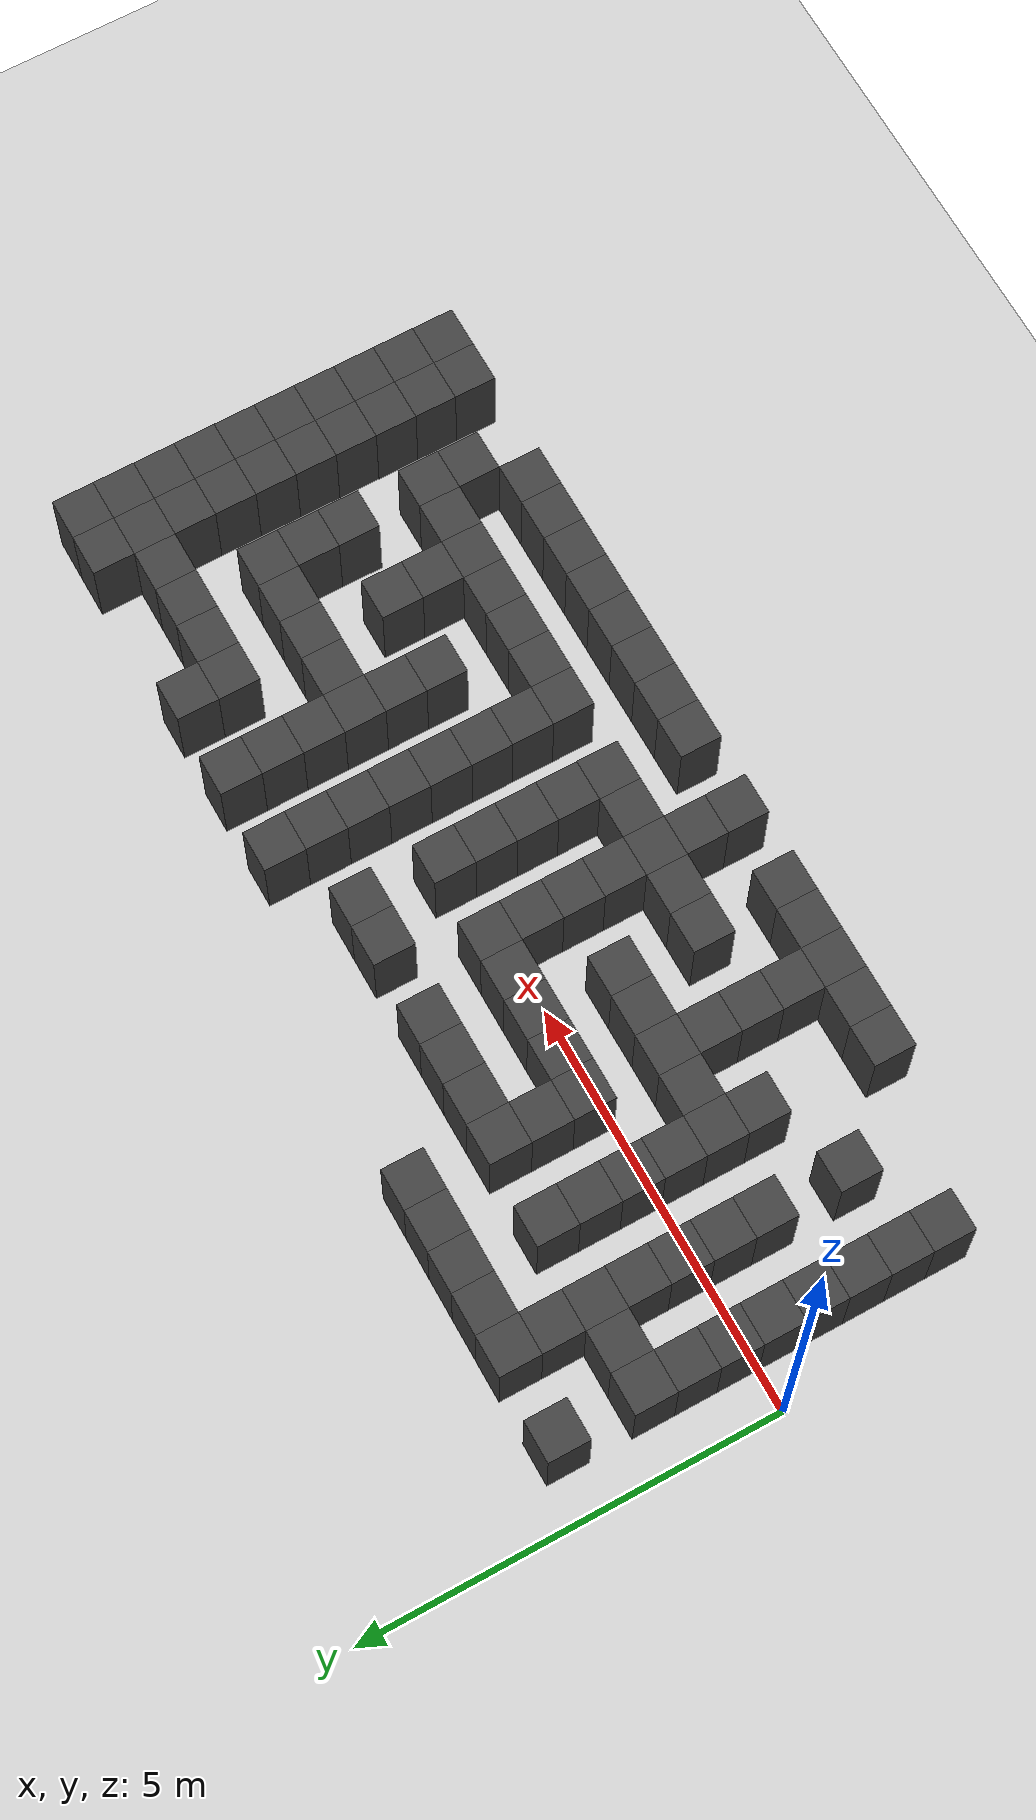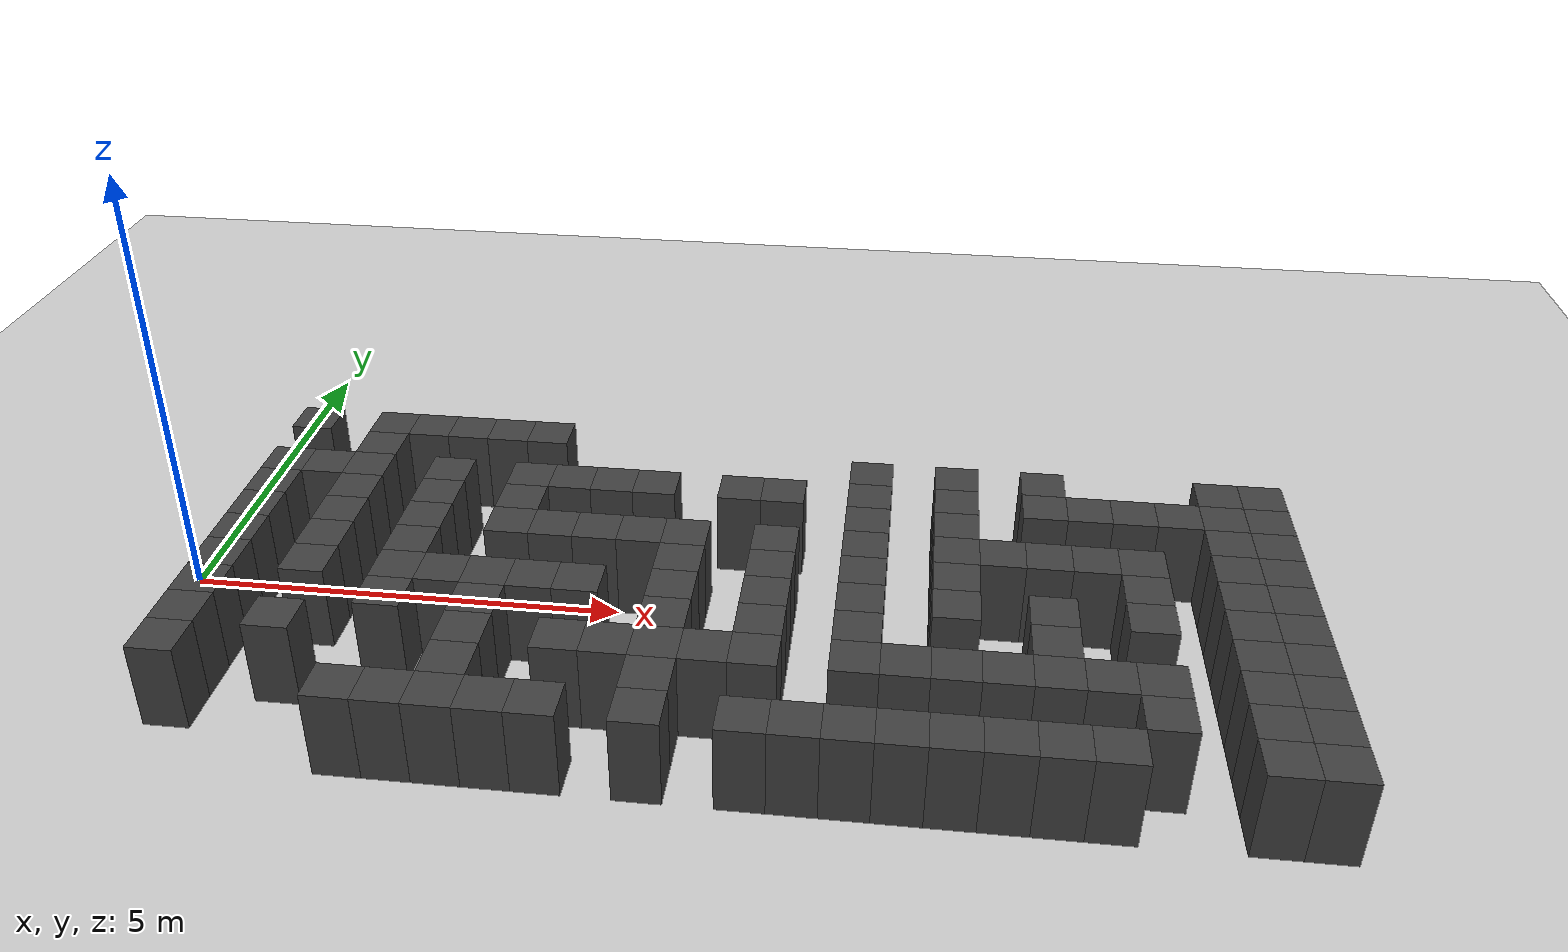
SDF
<sdf version="1.7">
 <world name="map_17663">
  <model name="ground_plane">
   <static>true</static>
   <link name="link">
    <collision name="collision">
     <geometry><plane><normal>0 0 1</normal><size>200 200</size></plane></geometry>
    </collision>
    <visual name="visual">
     <geometry><plane><normal>0 0 1</normal><size>200 200</size></plane></geometry>
     <material><ambient>0.8 0.8 0.8 1</ambient><diffuse>0.8 0.8 0.8 1</diffuse></material>
    </visual>
   </link>
  </model>
  <model name="maze_environment">
   <static>true</static>
   <link name="wall_517">
    <pose>0.750 2.250 0.500 0 0 0</pose>
    <collision name="col"><geometry><box><size>0.5 0.5 1.0</size></box></geometry></collision>
    <visual name="vis">
     <geometry><box><size>0.5 0.5 1.0</size></box></geometry>
     <material><ambient>0.15 0.15 0.15 1</ambient><diffuse>0.25 0.25 0.25 1</diffuse></material>
    </visual>
   </link>
   <link name="wall_518">
    <pose>1.750 2.250 0.500 0 0 0</pose>
    <collision name="col"><geometry><box><size>0.5 0.5 1.0</size></box></geometry></collision>
    <visual name="vis">
     <geometry><box><size>0.5 0.5 1.0</size></box></geometry>
     <material><ambient>0.15 0.15 0.15 1</ambient><diffuse>0.25 0.25 0.25 1</diffuse></material>
    </visual>
   </link>
   <link name="wall_519">
    <pose>2.250 2.250 0.500 0 0 0</pose>
    <collision name="col"><geometry><box><size>0.5 0.5 1.0</size></box></geometry></collision>
    <visual name="vis">
     <geometry><box><size>0.5 0.5 1.0</size></box></geometry>
     <material><ambient>0.15 0.15 0.15 1</ambient><diffuse>0.25 0.25 0.25 1</diffuse></material>
    </visual>
   </link>
   <link name="wall_520">
    <pose>2.750 2.250 0.500 0 0 0</pose>
    <collision name="col"><geometry><box><size>0.5 0.5 1.0</size></box></geometry></collision>
    <visual name="vis">
     <geometry><box><size>0.5 0.5 1.0</size></box></geometry>
     <material><ambient>0.15 0.15 0.15 1</ambient><diffuse>0.25 0.25 0.25 1</diffuse></material>
    </visual>
   </link>
   <link name="wall_521">
    <pose>3.250 2.250 0.500 0 0 0</pose>
    <collision name="col"><geometry><box><size>0.5 0.5 1.0</size></box></geometry></collision>
    <visual name="vis">
     <geometry><box><size>0.5 0.5 1.0</size></box></geometry>
     <material><ambient>0.15 0.15 0.15 1</ambient><diffuse>0.25 0.25 0.25 1</diffuse></material>
    </visual>
   </link>
   <link name="wall_522">
    <pose>3.750 2.250 0.500 0 0 0</pose>
    <collision name="col"><geometry><box><size>0.5 0.5 1.0</size></box></geometry></collision>
    <visual name="vis">
     <geometry><box><size>0.5 0.5 1.0</size></box></geometry>
     <material><ambient>0.15 0.15 0.15 1</ambient><diffuse>0.25 0.25 0.25 1</diffuse></material>
    </visual>
   </link>
   <link name="wall_537">
    <pose>1.750 1.750 0.500 0 0 0</pose>
    <collision name="col"><geometry><box><size>0.5 0.5 1.0</size></box></geometry></collision>
    <visual name="vis">
     <geometry><box><size>0.5 0.5 1.0</size></box></geometry>
     <material><ambient>0.15 0.15 0.15 1</ambient><diffuse>0.25 0.25 0.25 1</diffuse></material>
    </visual>
   </link>
   <link name="wall_538">
    <pose>7.750 1.750 0.500 0 0 0</pose>
    <collision name="col"><geometry><box><size>0.5 0.5 1.0</size></box></geometry></collision>
    <visual name="vis">
     <geometry><box><size>0.5 0.5 1.0</size></box></geometry>
     <material><ambient>0.15 0.15 0.15 1</ambient><diffuse>0.25 0.25 0.25 1</diffuse></material>
    </visual>
   </link>
   <link name="wall_539">
    <pose>8.750 1.750 0.500 0 0 0</pose>
    <collision name="col"><geometry><box><size>0.5 0.5 1.0</size></box></geometry></collision>
    <visual name="vis">
     <geometry><box><size>0.5 0.5 1.0</size></box></geometry>
     <material><ambient>0.15 0.15 0.15 1</ambient><diffuse>0.25 0.25 0.25 1</diffuse></material>
    </visual>
   </link>
   <link name="wall_540">
    <pose>9.750 1.750 0.500 0 0 0</pose>
    <collision name="col"><geometry><box><size>0.5 0.5 1.0</size></box></geometry></collision>
    <visual name="vis">
     <geometry><box><size>0.5 0.5 1.0</size></box></geometry>
     <material><ambient>0.15 0.15 0.15 1</ambient><diffuse>0.25 0.25 0.25 1</diffuse></material>
    </visual>
   </link>
   <link name="wall_541">
    <pose>11.750 1.750 0.500 0 0 0</pose>
    <collision name="col"><geometry><box><size>0.5 0.5 1.0</size></box></geometry></collision>
    <visual name="vis">
     <geometry><box><size>0.5 0.5 1.0</size></box></geometry>
     <material><ambient>0.15 0.15 0.15 1</ambient><diffuse>0.25 0.25 0.25 1</diffuse></material>
    </visual>
   </link>
   <link name="wall_542">
    <pose>12.250 1.750 0.500 0 0 0</pose>
    <collision name="col"><geometry><box><size>0.5 0.5 1.0</size></box></geometry></collision>
    <visual name="vis">
     <geometry><box><size>0.5 0.5 1.0</size></box></geometry>
     <material><ambient>0.15 0.15 0.15 1</ambient><diffuse>0.25 0.25 0.25 1</diffuse></material>
    </visual>
   </link>
   <link name="wall_559">
    <pose>0.750 1.250 0.500 0 0 0</pose>
    <collision name="col"><geometry><box><size>0.5 0.5 1.0</size></box></geometry></collision>
    <visual name="vis">
     <geometry><box><size>0.5 0.5 1.0</size></box></geometry>
     <material><ambient>0.15 0.15 0.15 1</ambient><diffuse>0.25 0.25 0.25 1</diffuse></material>
    </visual>
   </link>
   <link name="wall_560">
    <pose>1.250 1.250 0.500 0 0 0</pose>
    <collision name="col"><geometry><box><size>0.5 0.5 1.0</size></box></geometry></collision>
    <visual name="vis">
     <geometry><box><size>0.5 0.5 1.0</size></box></geometry>
     <material><ambient>0.15 0.15 0.15 1</ambient><diffuse>0.25 0.25 0.25 1</diffuse></material>
    </visual>
   </link>
   <link name="wall_561">
    <pose>1.750 1.250 0.500 0 0 0</pose>
    <collision name="col"><geometry><box><size>0.5 0.5 1.0</size></box></geometry></collision>
    <visual name="vis">
     <geometry><box><size>0.5 0.5 1.0</size></box></geometry>
     <material><ambient>0.15 0.15 0.15 1</ambient><diffuse>0.25 0.25 0.25 1</diffuse></material>
    </visual>
   </link>
   <link name="wall_562">
    <pose>2.750 1.250 0.500 0 0 0</pose>
    <collision name="col"><geometry><box><size>0.5 0.5 1.0</size></box></geometry></collision>
    <visual name="vis">
     <geometry><box><size>0.5 0.5 1.0</size></box></geometry>
     <material><ambient>0.15 0.15 0.15 1</ambient><diffuse>0.25 0.25 0.25 1</diffuse></material>
    </visual>
   </link>
   <link name="wall_563">
    <pose>3.750 1.250 0.500 0 0 0</pose>
    <collision name="col"><geometry><box><size>0.5 0.5 1.0</size></box></geometry></collision>
    <visual name="vis">
     <geometry><box><size>0.5 0.5 1.0</size></box></geometry>
     <material><ambient>0.15 0.15 0.15 1</ambient><diffuse>0.25 0.25 0.25 1</diffuse></material>
    </visual>
   </link>
   <link name="wall_564">
    <pose>4.250 1.250 0.500 0 0 0</pose>
    <collision name="col"><geometry><box><size>0.5 0.5 1.0</size></box></geometry></collision>
    <visual name="vis">
     <geometry><box><size>0.5 0.5 1.0</size></box></geometry>
     <material><ambient>0.15 0.15 0.15 1</ambient><diffuse>0.25 0.25 0.25 1</diffuse></material>
    </visual>
   </link>
   <link name="wall_565">
    <pose>4.750 1.250 0.500 0 0 0</pose>
    <collision name="col"><geometry><box><size>0.5 0.5 1.0</size></box></geometry></collision>
    <visual name="vis">
     <geometry><box><size>0.5 0.5 1.0</size></box></geometry>
     <material><ambient>0.15 0.15 0.15 1</ambient><diffuse>0.25 0.25 0.25 1</diffuse></material>
    </visual>
   </link>
   <link name="wall_566">
    <pose>5.250 1.250 0.500 0 0 0</pose>
    <collision name="col"><geometry><box><size>0.5 0.5 1.0</size></box></geometry></collision>
    <visual name="vis">
     <geometry><box><size>0.5 0.5 1.0</size></box></geometry>
     <material><ambient>0.15 0.15 0.15 1</ambient><diffuse>0.25 0.25 0.25 1</diffuse></material>
    </visual>
   </link>
   <link name="wall_567">
    <pose>6.250 1.250 0.500 0 0 0</pose>
    <collision name="col"><geometry><box><size>0.5 0.5 1.0</size></box></geometry></collision>
    <visual name="vis">
     <geometry><box><size>0.5 0.5 1.0</size></box></geometry>
     <material><ambient>0.15 0.15 0.15 1</ambient><diffuse>0.25 0.25 0.25 1</diffuse></material>
    </visual>
   </link>
   <link name="wall_568">
    <pose>6.750 1.250 0.500 0 0 0</pose>
    <collision name="col"><geometry><box><size>0.5 0.5 1.0</size></box></geometry></collision>
    <visual name="vis">
     <geometry><box><size>0.5 0.5 1.0</size></box></geometry>
     <material><ambient>0.15 0.15 0.15 1</ambient><diffuse>0.25 0.25 0.25 1</diffuse></material>
    </visual>
   </link>
   <link name="wall_569">
    <pose>7.750 1.250 0.500 0 0 0</pose>
    <collision name="col"><geometry><box><size>0.5 0.5 1.0</size></box></geometry></collision>
    <visual name="vis">
     <geometry><box><size>0.5 0.5 1.0</size></box></geometry>
     <material><ambient>0.15 0.15 0.15 1</ambient><diffuse>0.25 0.25 0.25 1</diffuse></material>
    </visual>
   </link>
   <link name="wall_570">
    <pose>8.750 1.250 0.500 0 0 0</pose>
    <collision name="col"><geometry><box><size>0.5 0.5 1.0</size></box></geometry></collision>
    <visual name="vis">
     <geometry><box><size>0.5 0.5 1.0</size></box></geometry>
     <material><ambient>0.15 0.15 0.15 1</ambient><diffuse>0.25 0.25 0.25 1</diffuse></material>
    </visual>
   </link>
   <link name="wall_571">
    <pose>9.750 1.250 0.500 0 0 0</pose>
    <collision name="col"><geometry><box><size>0.5 0.5 1.0</size></box></geometry></collision>
    <visual name="vis">
     <geometry><box><size>0.5 0.5 1.0</size></box></geometry>
     <material><ambient>0.15 0.15 0.15 1</ambient><diffuse>0.25 0.25 0.25 1</diffuse></material>
    </visual>
   </link>
   <link name="wall_572">
    <pose>10.250 1.250 0.500 0 0 0</pose>
    <collision name="col"><geometry><box><size>0.5 0.5 1.0</size></box></geometry></collision>
    <visual name="vis">
     <geometry><box><size>0.5 0.5 1.0</size></box></geometry>
     <material><ambient>0.15 0.15 0.15 1</ambient><diffuse>0.25 0.25 0.25 1</diffuse></material>
    </visual>
   </link>
   <link name="wall_573">
    <pose>10.750 1.250 0.500 0 0 0</pose>
    <collision name="col"><geometry><box><size>0.5 0.5 1.0</size></box></geometry></collision>
    <visual name="vis">
     <geometry><box><size>0.5 0.5 1.0</size></box></geometry>
     <material><ambient>0.15 0.15 0.15 1</ambient><diffuse>0.25 0.25 0.25 1</diffuse></material>
    </visual>
   </link>
   <link name="wall_574">
    <pose>11.250 1.250 0.500 0 0 0</pose>
    <collision name="col"><geometry><box><size>0.5 0.5 1.0</size></box></geometry></collision>
    <visual name="vis">
     <geometry><box><size>0.5 0.5 1.0</size></box></geometry>
     <material><ambient>0.15 0.15 0.15 1</ambient><diffuse>0.25 0.25 0.25 1</diffuse></material>
    </visual>
   </link>
   <link name="wall_575">
    <pose>11.750 1.250 0.500 0 0 0</pose>
    <collision name="col"><geometry><box><size>0.5 0.5 1.0</size></box></geometry></collision>
    <visual name="vis">
     <geometry><box><size>0.5 0.5 1.0</size></box></geometry>
     <material><ambient>0.15 0.15 0.15 1</ambient><diffuse>0.25 0.25 0.25 1</diffuse></material>
    </visual>
   </link>
   <link name="wall_576">
    <pose>12.250 1.250 0.500 0 0 0</pose>
    <collision name="col"><geometry><box><size>0.5 0.5 1.0</size></box></geometry></collision>
    <visual name="vis">
     <geometry><box><size>0.5 0.5 1.0</size></box></geometry>
     <material><ambient>0.15 0.15 0.15 1</ambient><diffuse>0.25 0.25 0.25 1</diffuse></material>
    </visual>
   </link>
   <link name="wall_579">
    <pose>0.750 0.750 0.500 0 0 0</pose>
    <collision name="col"><geometry><box><size>0.5 0.5 1.0</size></box></geometry></collision>
    <visual name="vis">
     <geometry><box><size>0.5 0.5 1.0</size></box></geometry>
     <material><ambient>0.15 0.15 0.15 1</ambient><diffuse>0.25 0.25 0.25 1</diffuse></material>
    </visual>
   </link>
   <link name="wall_580">
    <pose>1.750 0.750 0.500 0 0 0</pose>
    <collision name="col"><geometry><box><size>0.5 0.5 1.0</size></box></geometry></collision>
    <visual name="vis">
     <geometry><box><size>0.5 0.5 1.0</size></box></geometry>
     <material><ambient>0.15 0.15 0.15 1</ambient><diffuse>0.25 0.25 0.25 1</diffuse></material>
    </visual>
   </link>
   <link name="wall_581">
    <pose>2.750 0.750 0.500 0 0 0</pose>
    <collision name="col"><geometry><box><size>0.5 0.5 1.0</size></box></geometry></collision>
    <visual name="vis">
     <geometry><box><size>0.5 0.5 1.0</size></box></geometry>
     <material><ambient>0.15 0.15 0.15 1</ambient><diffuse>0.25 0.25 0.25 1</diffuse></material>
    </visual>
   </link>
   <link name="wall_582">
    <pose>3.750 0.750 0.500 0 0 0</pose>
    <collision name="col"><geometry><box><size>0.5 0.5 1.0</size></box></geometry></collision>
    <visual name="vis">
     <geometry><box><size>0.5 0.5 1.0</size></box></geometry>
     <material><ambient>0.15 0.15 0.15 1</ambient><diffuse>0.25 0.25 0.25 1</diffuse></material>
    </visual>
   </link>
   <link name="wall_583">
    <pose>7.750 0.750 0.500 0 0 0</pose>
    <collision name="col"><geometry><box><size>0.5 0.5 1.0</size></box></geometry></collision>
    <visual name="vis">
     <geometry><box><size>0.5 0.5 1.0</size></box></geometry>
     <material><ambient>0.15 0.15 0.15 1</ambient><diffuse>0.25 0.25 0.25 1</diffuse></material>
    </visual>
   </link>
   <link name="wall_584">
    <pose>8.750 0.750 0.500 0 0 0</pose>
    <collision name="col"><geometry><box><size>0.5 0.5 1.0</size></box></geometry></collision>
    <visual name="vis">
     <geometry><box><size>0.5 0.5 1.0</size></box></geometry>
     <material><ambient>0.15 0.15 0.15 1</ambient><diffuse>0.25 0.25 0.25 1</diffuse></material>
    </visual>
   </link>
   <link name="wall_585">
    <pose>11.750 0.750 0.500 0 0 0</pose>
    <collision name="col"><geometry><box><size>0.5 0.5 1.0</size></box></geometry></collision>
    <visual name="vis">
     <geometry><box><size>0.5 0.5 1.0</size></box></geometry>
     <material><ambient>0.15 0.15 0.15 1</ambient><diffuse>0.25 0.25 0.25 1</diffuse></material>
    </visual>
   </link>
   <link name="wall_586">
    <pose>12.250 0.750 0.500 0 0 0</pose>
    <collision name="col"><geometry><box><size>0.5 0.5 1.0</size></box></geometry></collision>
    <visual name="vis">
     <geometry><box><size>0.5 0.5 1.0</size></box></geometry>
     <material><ambient>0.15 0.15 0.15 1</ambient><diffuse>0.25 0.25 0.25 1</diffuse></material>
    </visual>
   </link>
   <link name="wall_607">
    <pose>0.750 0.250 0.500 0 0 0</pose>
    <collision name="col"><geometry><box><size>0.5 0.5 1.0</size></box></geometry></collision>
    <visual name="vis">
     <geometry><box><size>0.5 0.5 1.0</size></box></geometry>
     <material><ambient>0.15 0.15 0.15 1</ambient><diffuse>0.25 0.25 0.25 1</diffuse></material>
    </visual>
   </link>
   <link name="wall_608">
    <pose>1.750 0.250 0.500 0 0 0</pose>
    <collision name="col"><geometry><box><size>0.5 0.5 1.0</size></box></geometry></collision>
    <visual name="vis">
     <geometry><box><size>0.5 0.5 1.0</size></box></geometry>
     <material><ambient>0.15 0.15 0.15 1</ambient><diffuse>0.25 0.25 0.25 1</diffuse></material>
    </visual>
   </link>
   <link name="wall_609">
    <pose>2.750 0.250 0.500 0 0 0</pose>
    <collision name="col"><geometry><box><size>0.5 0.5 1.0</size></box></geometry></collision>
    <visual name="vis">
     <geometry><box><size>0.5 0.5 1.0</size></box></geometry>
     <material><ambient>0.15 0.15 0.15 1</ambient><diffuse>0.25 0.25 0.25 1</diffuse></material>
    </visual>
   </link>
   <link name="wall_610">
    <pose>3.750 0.250 0.500 0 0 0</pose>
    <collision name="col"><geometry><box><size>0.5 0.5 1.0</size></box></geometry></collision>
    <visual name="vis">
     <geometry><box><size>0.5 0.5 1.0</size></box></geometry>
     <material><ambient>0.15 0.15 0.15 1</ambient><diffuse>0.25 0.25 0.25 1</diffuse></material>
    </visual>
   </link>
   <link name="wall_611">
    <pose>4.250 0.250 0.500 0 0 0</pose>
    <collision name="col"><geometry><box><size>0.5 0.5 1.0</size></box></geometry></collision>
    <visual name="vis">
     <geometry><box><size>0.5 0.5 1.0</size></box></geometry>
     <material><ambient>0.15 0.15 0.15 1</ambient><diffuse>0.25 0.25 0.25 1</diffuse></material>
    </visual>
   </link>
   <link name="wall_612">
    <pose>4.750 0.250 0.500 0 0 0</pose>
    <collision name="col"><geometry><box><size>0.5 0.5 1.0</size></box></geometry></collision>
    <visual name="vis">
     <geometry><box><size>0.5 0.5 1.0</size></box></geometry>
     <material><ambient>0.15 0.15 0.15 1</ambient><diffuse>0.25 0.25 0.25 1</diffuse></material>
    </visual>
   </link>
   <link name="wall_613">
    <pose>5.250 0.250 0.500 0 0 0</pose>
    <collision name="col"><geometry><box><size>0.5 0.5 1.0</size></box></geometry></collision>
    <visual name="vis">
     <geometry><box><size>0.5 0.5 1.0</size></box></geometry>
     <material><ambient>0.15 0.15 0.15 1</ambient><diffuse>0.25 0.25 0.25 1</diffuse></material>
    </visual>
   </link>
   <link name="wall_614">
    <pose>5.750 0.250 0.500 0 0 0</pose>
    <collision name="col"><geometry><box><size>0.5 0.5 1.0</size></box></geometry></collision>
    <visual name="vis">
     <geometry><box><size>0.5 0.5 1.0</size></box></geometry>
     <material><ambient>0.15 0.15 0.15 1</ambient><diffuse>0.25 0.25 0.25 1</diffuse></material>
    </visual>
   </link>
   <link name="wall_615">
    <pose>6.750 0.250 0.500 0 0 0</pose>
    <collision name="col"><geometry><box><size>0.5 0.5 1.0</size></box></geometry></collision>
    <visual name="vis">
     <geometry><box><size>0.5 0.5 1.0</size></box></geometry>
     <material><ambient>0.15 0.15 0.15 1</ambient><diffuse>0.25 0.25 0.25 1</diffuse></material>
    </visual>
   </link>
   <link name="wall_616">
    <pose>7.750 0.250 0.500 0 0 0</pose>
    <collision name="col"><geometry><box><size>0.5 0.5 1.0</size></box></geometry></collision>
    <visual name="vis">
     <geometry><box><size>0.5 0.5 1.0</size></box></geometry>
     <material><ambient>0.15 0.15 0.15 1</ambient><diffuse>0.25 0.25 0.25 1</diffuse></material>
    </visual>
   </link>
   <link name="wall_617">
    <pose>8.750 0.250 0.500 0 0 0</pose>
    <collision name="col"><geometry><box><size>0.5 0.5 1.0</size></box></geometry></collision>
    <visual name="vis">
     <geometry><box><size>0.5 0.5 1.0</size></box></geometry>
     <material><ambient>0.15 0.15 0.15 1</ambient><diffuse>0.25 0.25 0.25 1</diffuse></material>
    </visual>
   </link>
   <link name="wall_618">
    <pose>9.250 0.250 0.500 0 0 0</pose>
    <collision name="col"><geometry><box><size>0.5 0.5 1.0</size></box></geometry></collision>
    <visual name="vis">
     <geometry><box><size>0.5 0.5 1.0</size></box></geometry>
     <material><ambient>0.15 0.15 0.15 1</ambient><diffuse>0.25 0.25 0.25 1</diffuse></material>
    </visual>
   </link>
   <link name="wall_619">
    <pose>9.750 0.250 0.500 0 0 0</pose>
    <collision name="col"><geometry><box><size>0.5 0.5 1.0</size></box></geometry></collision>
    <visual name="vis">
     <geometry><box><size>0.5 0.5 1.0</size></box></geometry>
     <material><ambient>0.15 0.15 0.15 1</ambient><diffuse>0.25 0.25 0.25 1</diffuse></material>
    </visual>
   </link>
   <link name="wall_620">
    <pose>10.250 0.250 0.500 0 0 0</pose>
    <collision name="col"><geometry><box><size>0.5 0.5 1.0</size></box></geometry></collision>
    <visual name="vis">
     <geometry><box><size>0.5 0.5 1.0</size></box></geometry>
     <material><ambient>0.15 0.15 0.15 1</ambient><diffuse>0.25 0.25 0.25 1</diffuse></material>
    </visual>
   </link>
   <link name="wall_621">
    <pose>10.750 0.250 0.500 0 0 0</pose>
    <collision name="col"><geometry><box><size>0.5 0.5 1.0</size></box></geometry></collision>
    <visual name="vis">
     <geometry><box><size>0.5 0.5 1.0</size></box></geometry>
     <material><ambient>0.15 0.15 0.15 1</ambient><diffuse>0.25 0.25 0.25 1</diffuse></material>
    </visual>
   </link>
   <link name="wall_622">
    <pose>11.750 0.250 0.500 0 0 0</pose>
    <collision name="col"><geometry><box><size>0.5 0.5 1.0</size></box></geometry></collision>
    <visual name="vis">
     <geometry><box><size>0.5 0.5 1.0</size></box></geometry>
     <material><ambient>0.15 0.15 0.15 1</ambient><diffuse>0.25 0.25 0.25 1</diffuse></material>
    </visual>
   </link>
   <link name="wall_623">
    <pose>12.250 0.250 0.500 0 0 0</pose>
    <collision name="col"><geometry><box><size>0.5 0.5 1.0</size></box></geometry></collision>
    <visual name="vis">
     <geometry><box><size>0.5 0.5 1.0</size></box></geometry>
     <material><ambient>0.15 0.15 0.15 1</ambient><diffuse>0.25 0.25 0.25 1</diffuse></material>
    </visual>
   </link>
   <link name="wall_630">
    <pose>0.750 -0.250 0.500 0 0 0</pose>
    <collision name="col"><geometry><box><size>0.5 0.5 1.0</size></box></geometry></collision>
    <visual name="vis">
     <geometry><box><size>0.5 0.5 1.0</size></box></geometry>
     <material><ambient>0.15 0.15 0.15 1</ambient><diffuse>0.25 0.25 0.25 1</diffuse></material>
    </visual>
   </link>
   <link name="wall_631">
    <pose>1.750 -0.250 0.500 0 0 0</pose>
    <collision name="col"><geometry><box><size>0.5 0.5 1.0</size></box></geometry></collision>
    <visual name="vis">
     <geometry><box><size>0.5 0.5 1.0</size></box></geometry>
     <material><ambient>0.15 0.15 0.15 1</ambient><diffuse>0.25 0.25 0.25 1</diffuse></material>
    </visual>
   </link>
   <link name="wall_632">
    <pose>2.750 -0.250 0.500 0 0 0</pose>
    <collision name="col"><geometry><box><size>0.5 0.5 1.0</size></box></geometry></collision>
    <visual name="vis">
     <geometry><box><size>0.5 0.5 1.0</size></box></geometry>
     <material><ambient>0.15 0.15 0.15 1</ambient><diffuse>0.25 0.25 0.25 1</diffuse></material>
    </visual>
   </link>
   <link name="wall_633">
    <pose>5.750 -0.250 0.500 0 0 0</pose>
    <collision name="col"><geometry><box><size>0.5 0.5 1.0</size></box></geometry></collision>
    <visual name="vis">
     <geometry><box><size>0.5 0.5 1.0</size></box></geometry>
     <material><ambient>0.15 0.15 0.15 1</ambient><diffuse>0.25 0.25 0.25 1</diffuse></material>
    </visual>
   </link>
   <link name="wall_634">
    <pose>6.750 -0.250 0.500 0 0 0</pose>
    <collision name="col"><geometry><box><size>0.5 0.5 1.0</size></box></geometry></collision>
    <visual name="vis">
     <geometry><box><size>0.5 0.5 1.0</size></box></geometry>
     <material><ambient>0.15 0.15 0.15 1</ambient><diffuse>0.25 0.25 0.25 1</diffuse></material>
    </visual>
   </link>
   <link name="wall_635">
    <pose>7.750 -0.250 0.500 0 0 0</pose>
    <collision name="col"><geometry><box><size>0.5 0.5 1.0</size></box></geometry></collision>
    <visual name="vis">
     <geometry><box><size>0.5 0.5 1.0</size></box></geometry>
     <material><ambient>0.15 0.15 0.15 1</ambient><diffuse>0.25 0.25 0.25 1</diffuse></material>
    </visual>
   </link>
   <link name="wall_636">
    <pose>8.750 -0.250 0.500 0 0 0</pose>
    <collision name="col"><geometry><box><size>0.5 0.5 1.0</size></box></geometry></collision>
    <visual name="vis">
     <geometry><box><size>0.5 0.5 1.0</size></box></geometry>
     <material><ambient>0.15 0.15 0.15 1</ambient><diffuse>0.25 0.25 0.25 1</diffuse></material>
    </visual>
   </link>
   <link name="wall_637">
    <pose>10.750 -0.250 0.500 0 0 0</pose>
    <collision name="col"><geometry><box><size>0.5 0.5 1.0</size></box></geometry></collision>
    <visual name="vis">
     <geometry><box><size>0.5 0.5 1.0</size></box></geometry>
     <material><ambient>0.15 0.15 0.15 1</ambient><diffuse>0.25 0.25 0.25 1</diffuse></material>
    </visual>
   </link>
   <link name="wall_638">
    <pose>11.750 -0.250 0.500 0 0 0</pose>
    <collision name="col"><geometry><box><size>0.5 0.5 1.0</size></box></geometry></collision>
    <visual name="vis">
     <geometry><box><size>0.5 0.5 1.0</size></box></geometry>
     <material><ambient>0.15 0.15 0.15 1</ambient><diffuse>0.25 0.25 0.25 1</diffuse></material>
    </visual>
   </link>
   <link name="wall_639">
    <pose>12.250 -0.250 0.500 0 0 0</pose>
    <collision name="col"><geometry><box><size>0.5 0.5 1.0</size></box></geometry></collision>
    <visual name="vis">
     <geometry><box><size>0.5 0.5 1.0</size></box></geometry>
     <material><ambient>0.15 0.15 0.15 1</ambient><diffuse>0.25 0.25 0.25 1</diffuse></material>
    </visual>
   </link>
   <link name="wall_659">
    <pose>0.750 -0.750 0.500 0 0 0</pose>
    <collision name="col"><geometry><box><size>0.5 0.5 1.0</size></box></geometry></collision>
    <visual name="vis">
     <geometry><box><size>0.5 0.5 1.0</size></box></geometry>
     <material><ambient>0.15 0.15 0.15 1</ambient><diffuse>0.25 0.25 0.25 1</diffuse></material>
    </visual>
   </link>
   <link name="wall_660">
    <pose>1.750 -0.750 0.500 0 0 0</pose>
    <collision name="col"><geometry><box><size>0.5 0.5 1.0</size></box></geometry></collision>
    <visual name="vis">
     <geometry><box><size>0.5 0.5 1.0</size></box></geometry>
     <material><ambient>0.15 0.15 0.15 1</ambient><diffuse>0.25 0.25 0.25 1</diffuse></material>
    </visual>
   </link>
   <link name="wall_661">
    <pose>2.750 -0.750 0.500 0 0 0</pose>
    <collision name="col"><geometry><box><size>0.5 0.5 1.0</size></box></geometry></collision>
    <visual name="vis">
     <geometry><box><size>0.5 0.5 1.0</size></box></geometry>
     <material><ambient>0.15 0.15 0.15 1</ambient><diffuse>0.25 0.25 0.25 1</diffuse></material>
    </visual>
   </link>
   <link name="wall_662">
    <pose>3.250 -0.750 0.500 0 0 0</pose>
    <collision name="col"><geometry><box><size>0.5 0.5 1.0</size></box></geometry></collision>
    <visual name="vis">
     <geometry><box><size>0.5 0.5 1.0</size></box></geometry>
     <material><ambient>0.15 0.15 0.15 1</ambient><diffuse>0.25 0.25 0.25 1</diffuse></material>
    </visual>
   </link>
   <link name="wall_663">
    <pose>3.750 -0.750 0.500 0 0 0</pose>
    <collision name="col"><geometry><box><size>0.5 0.5 1.0</size></box></geometry></collision>
    <visual name="vis">
     <geometry><box><size>0.5 0.5 1.0</size></box></geometry>
     <material><ambient>0.15 0.15 0.15 1</ambient><diffuse>0.25 0.25 0.25 1</diffuse></material>
    </visual>
   </link>
   <link name="wall_664">
    <pose>4.250 -0.750 0.500 0 0 0</pose>
    <collision name="col"><geometry><box><size>0.5 0.5 1.0</size></box></geometry></collision>
    <visual name="vis">
     <geometry><box><size>0.5 0.5 1.0</size></box></geometry>
     <material><ambient>0.15 0.15 0.15 1</ambient><diffuse>0.25 0.25 0.25 1</diffuse></material>
    </visual>
   </link>
   <link name="wall_665">
    <pose>4.750 -0.750 0.500 0 0 0</pose>
    <collision name="col"><geometry><box><size>0.5 0.5 1.0</size></box></geometry></collision>
    <visual name="vis">
     <geometry><box><size>0.5 0.5 1.0</size></box></geometry>
     <material><ambient>0.15 0.15 0.15 1</ambient><diffuse>0.25 0.25 0.25 1</diffuse></material>
    </visual>
   </link>
   <link name="wall_666">
    <pose>5.750 -0.750 0.500 0 0 0</pose>
    <collision name="col"><geometry><box><size>0.5 0.5 1.0</size></box></geometry></collision>
    <visual name="vis">
     <geometry><box><size>0.5 0.5 1.0</size></box></geometry>
     <material><ambient>0.15 0.15 0.15 1</ambient><diffuse>0.25 0.25 0.25 1</diffuse></material>
    </visual>
   </link>
   <link name="wall_667">
    <pose>6.750 -0.750 0.500 0 0 0</pose>
    <collision name="col"><geometry><box><size>0.5 0.5 1.0</size></box></geometry></collision>
    <visual name="vis">
     <geometry><box><size>0.5 0.5 1.0</size></box></geometry>
     <material><ambient>0.15 0.15 0.15 1</ambient><diffuse>0.25 0.25 0.25 1</diffuse></material>
    </visual>
   </link>
   <link name="wall_668">
    <pose>7.750 -0.750 0.500 0 0 0</pose>
    <collision name="col"><geometry><box><size>0.5 0.5 1.0</size></box></geometry></collision>
    <visual name="vis">
     <geometry><box><size>0.5 0.5 1.0</size></box></geometry>
     <material><ambient>0.15 0.15 0.15 1</ambient><diffuse>0.25 0.25 0.25 1</diffuse></material>
    </visual>
   </link>
   <link name="wall_669">
    <pose>8.750 -0.750 0.500 0 0 0</pose>
    <collision name="col"><geometry><box><size>0.5 0.5 1.0</size></box></geometry></collision>
    <visual name="vis">
     <geometry><box><size>0.5 0.5 1.0</size></box></geometry>
     <material><ambient>0.15 0.15 0.15 1</ambient><diffuse>0.25 0.25 0.25 1</diffuse></material>
    </visual>
   </link>
   <link name="wall_670">
    <pose>9.750 -0.750 0.500 0 0 0</pose>
    <collision name="col"><geometry><box><size>0.5 0.5 1.0</size></box></geometry></collision>
    <visual name="vis">
     <geometry><box><size>0.5 0.5 1.0</size></box></geometry>
     <material><ambient>0.15 0.15 0.15 1</ambient><diffuse>0.25 0.25 0.25 1</diffuse></material>
    </visual>
   </link>
   <link name="wall_671">
    <pose>10.750 -0.750 0.500 0 0 0</pose>
    <collision name="col"><geometry><box><size>0.5 0.5 1.0</size></box></geometry></collision>
    <visual name="vis">
     <geometry><box><size>0.5 0.5 1.0</size></box></geometry>
     <material><ambient>0.15 0.15 0.15 1</ambient><diffuse>0.25 0.25 0.25 1</diffuse></material>
    </visual>
   </link>
   <link name="wall_672">
    <pose>11.750 -0.750 0.500 0 0 0</pose>
    <collision name="col"><geometry><box><size>0.5 0.5 1.0</size></box></geometry></collision>
    <visual name="vis">
     <geometry><box><size>0.5 0.5 1.0</size></box></geometry>
     <material><ambient>0.15 0.15 0.15 1</ambient><diffuse>0.25 0.25 0.25 1</diffuse></material>
    </visual>
   </link>
   <link name="wall_673">
    <pose>12.250 -0.750 0.500 0 0 0</pose>
    <collision name="col"><geometry><box><size>0.5 0.5 1.0</size></box></geometry></collision>
    <visual name="vis">
     <geometry><box><size>0.5 0.5 1.0</size></box></geometry>
     <material><ambient>0.15 0.15 0.15 1</ambient><diffuse>0.25 0.25 0.25 1</diffuse></material>
    </visual>
   </link>
   <link name="wall_681">
    <pose>0.750 -1.250 0.500 0 0 0</pose>
    <collision name="col"><geometry><box><size>0.5 0.5 1.0</size></box></geometry></collision>
    <visual name="vis">
     <geometry><box><size>0.5 0.5 1.0</size></box></geometry>
     <material><ambient>0.15 0.15 0.15 1</ambient><diffuse>0.25 0.25 0.25 1</diffuse></material>
    </visual>
   </link>
   <link name="wall_682">
    <pose>2.750 -1.250 0.500 0 0 0</pose>
    <collision name="col"><geometry><box><size>0.5 0.5 1.0</size></box></geometry></collision>
    <visual name="vis">
     <geometry><box><size>0.5 0.5 1.0</size></box></geometry>
     <material><ambient>0.15 0.15 0.15 1</ambient><diffuse>0.25 0.25 0.25 1</diffuse></material>
    </visual>
   </link>
   <link name="wall_683">
    <pose>3.750 -1.250 0.500 0 0 0</pose>
    <collision name="col"><geometry><box><size>0.5 0.5 1.0</size></box></geometry></collision>
    <visual name="vis">
     <geometry><box><size>0.5 0.5 1.0</size></box></geometry>
     <material><ambient>0.15 0.15 0.15 1</ambient><diffuse>0.25 0.25 0.25 1</diffuse></material>
    </visual>
   </link>
   <link name="wall_684">
    <pose>5.750 -1.250 0.500 0 0 0</pose>
    <collision name="col"><geometry><box><size>0.5 0.5 1.0</size></box></geometry></collision>
    <visual name="vis">
     <geometry><box><size>0.5 0.5 1.0</size></box></geometry>
     <material><ambient>0.15 0.15 0.15 1</ambient><diffuse>0.25 0.25 0.25 1</diffuse></material>
    </visual>
   </link>
   <link name="wall_685">
    <pose>6.750 -1.250 0.500 0 0 0</pose>
    <collision name="col"><geometry><box><size>0.5 0.5 1.0</size></box></geometry></collision>
    <visual name="vis">
     <geometry><box><size>0.5 0.5 1.0</size></box></geometry>
     <material><ambient>0.15 0.15 0.15 1</ambient><diffuse>0.25 0.25 0.25 1</diffuse></material>
    </visual>
   </link>
   <link name="wall_686">
    <pose>7.750 -1.250 0.500 0 0 0</pose>
    <collision name="col"><geometry><box><size>0.5 0.5 1.0</size></box></geometry></collision>
    <visual name="vis">
     <geometry><box><size>0.5 0.5 1.0</size></box></geometry>
     <material><ambient>0.15 0.15 0.15 1</ambient><diffuse>0.25 0.25 0.25 1</diffuse></material>
    </visual>
   </link>
   <link name="wall_687">
    <pose>9.750 -1.250 0.500 0 0 0</pose>
    <collision name="col"><geometry><box><size>0.5 0.5 1.0</size></box></geometry></collision>
    <visual name="vis">
     <geometry><box><size>0.5 0.5 1.0</size></box></geometry>
     <material><ambient>0.15 0.15 0.15 1</ambient><diffuse>0.25 0.25 0.25 1</diffuse></material>
    </visual>
   </link>
   <link name="wall_688">
    <pose>11.750 -1.250 0.500 0 0 0</pose>
    <collision name="col"><geometry><box><size>0.5 0.5 1.0</size></box></geometry></collision>
    <visual name="vis">
     <geometry><box><size>0.5 0.5 1.0</size></box></geometry>
     <material><ambient>0.15 0.15 0.15 1</ambient><diffuse>0.25 0.25 0.25 1</diffuse></material>
    </visual>
   </link>
   <link name="wall_689">
    <pose>12.250 -1.250 0.500 0 0 0</pose>
    <collision name="col"><geometry><box><size>0.5 0.5 1.0</size></box></geometry></collision>
    <visual name="vis">
     <geometry><box><size>0.5 0.5 1.0</size></box></geometry>
     <material><ambient>0.15 0.15 0.15 1</ambient><diffuse>0.25 0.25 0.25 1</diffuse></material>
    </visual>
   </link>
   <link name="wall_710">
    <pose>0.750 -1.750 0.500 0 0 0</pose>
    <collision name="col"><geometry><box><size>0.5 0.5 1.0</size></box></geometry></collision>
    <visual name="vis">
     <geometry><box><size>0.5 0.5 1.0</size></box></geometry>
     <material><ambient>0.15 0.15 0.15 1</ambient><diffuse>0.25 0.25 0.25 1</diffuse></material>
    </visual>
   </link>
   <link name="wall_711">
    <pose>1.750 -1.750 0.500 0 0 0</pose>
    <collision name="col"><geometry><box><size>0.5 0.5 1.0</size></box></geometry></collision>
    <visual name="vis">
     <geometry><box><size>0.5 0.5 1.0</size></box></geometry>
     <material><ambient>0.15 0.15 0.15 1</ambient><diffuse>0.25 0.25 0.25 1</diffuse></material>
    </visual>
   </link>
   <link name="wall_712">
    <pose>3.750 -1.750 0.500 0 0 0</pose>
    <collision name="col"><geometry><box><size>0.5 0.5 1.0</size></box></geometry></collision>
    <visual name="vis">
     <geometry><box><size>0.5 0.5 1.0</size></box></geometry>
     <material><ambient>0.15 0.15 0.15 1</ambient><diffuse>0.25 0.25 0.25 1</diffuse></material>
    </visual>
   </link>
   <link name="wall_713">
    <pose>4.750 -1.750 0.500 0 0 0</pose>
    <collision name="col"><geometry><box><size>0.5 0.5 1.0</size></box></geometry></collision>
    <visual name="vis">
     <geometry><box><size>0.5 0.5 1.0</size></box></geometry>
     <material><ambient>0.15 0.15 0.15 1</ambient><diffuse>0.25 0.25 0.25 1</diffuse></material>
    </visual>
   </link>
   <link name="wall_714">
    <pose>5.250 -1.750 0.500 0 0 0</pose>
    <collision name="col"><geometry><box><size>0.5 0.5 1.0</size></box></geometry></collision>
    <visual name="vis">
     <geometry><box><size>0.5 0.5 1.0</size></box></geometry>
     <material><ambient>0.15 0.15 0.15 1</ambient><diffuse>0.25 0.25 0.25 1</diffuse></material>
    </visual>
   </link>
   <link name="wall_715">
    <pose>5.750 -1.750 0.500 0 0 0</pose>
    <collision name="col"><geometry><box><size>0.5 0.5 1.0</size></box></geometry></collision>
    <visual name="vis">
     <geometry><box><size>0.5 0.5 1.0</size></box></geometry>
     <material><ambient>0.15 0.15 0.15 1</ambient><diffuse>0.25 0.25 0.25 1</diffuse></material>
    </visual>
   </link>
   <link name="wall_716">
    <pose>6.250 -1.750 0.500 0 0 0</pose>
    <collision name="col"><geometry><box><size>0.5 0.5 1.0</size></box></geometry></collision>
    <visual name="vis">
     <geometry><box><size>0.5 0.5 1.0</size></box></geometry>
     <material><ambient>0.15 0.15 0.15 1</ambient><diffuse>0.25 0.25 0.25 1</diffuse></material>
    </visual>
   </link>
   <link name="wall_717">
    <pose>6.750 -1.750 0.500 0 0 0</pose>
    <collision name="col"><geometry><box><size>0.5 0.5 1.0</size></box></geometry></collision>
    <visual name="vis">
     <geometry><box><size>0.5 0.5 1.0</size></box></geometry>
     <material><ambient>0.15 0.15 0.15 1</ambient><diffuse>0.25 0.25 0.25 1</diffuse></material>
    </visual>
   </link>
   <link name="wall_718">
    <pose>7.750 -1.750 0.500 0 0 0</pose>
    <collision name="col"><geometry><box><size>0.5 0.5 1.0</size></box></geometry></collision>
    <visual name="vis">
     <geometry><box><size>0.5 0.5 1.0</size></box></geometry>
     <material><ambient>0.15 0.15 0.15 1</ambient><diffuse>0.25 0.25 0.25 1</diffuse></material>
    </visual>
   </link>
   <link name="wall_719">
    <pose>8.250 -1.750 0.500 0 0 0</pose>
    <collision name="col"><geometry><box><size>0.5 0.5 1.0</size></box></geometry></collision>
    <visual name="vis">
     <geometry><box><size>0.5 0.5 1.0</size></box></geometry>
     <material><ambient>0.15 0.15 0.15 1</ambient><diffuse>0.25 0.25 0.25 1</diffuse></material>
    </visual>
   </link>
   <link name="wall_720">
    <pose>8.750 -1.750 0.500 0 0 0</pose>
    <collision name="col"><geometry><box><size>0.5 0.5 1.0</size></box></geometry></collision>
    <visual name="vis">
     <geometry><box><size>0.5 0.5 1.0</size></box></geometry>
     <material><ambient>0.15 0.15 0.15 1</ambient><diffuse>0.25 0.25 0.25 1</diffuse></material>
    </visual>
   </link>
   <link name="wall_721">
    <pose>9.250 -1.750 0.500 0 0 0</pose>
    <collision name="col"><geometry><box><size>0.5 0.5 1.0</size></box></geometry></collision>
    <visual name="vis">
     <geometry><box><size>0.5 0.5 1.0</size></box></geometry>
     <material><ambient>0.15 0.15 0.15 1</ambient><diffuse>0.25 0.25 0.25 1</diffuse></material>
    </visual>
   </link>
   <link name="wall_722">
    <pose>9.750 -1.750 0.500 0 0 0</pose>
    <collision name="col"><geometry><box><size>0.5 0.5 1.0</size></box></geometry></collision>
    <visual name="vis">
     <geometry><box><size>0.5 0.5 1.0</size></box></geometry>
     <material><ambient>0.15 0.15 0.15 1</ambient><diffuse>0.25 0.25 0.25 1</diffuse></material>
    </visual>
   </link>
   <link name="wall_723">
    <pose>10.250 -1.750 0.500 0 0 0</pose>
    <collision name="col"><geometry><box><size>0.5 0.5 1.0</size></box></geometry></collision>
    <visual name="vis">
     <geometry><box><size>0.5 0.5 1.0</size></box></geometry>
     <material><ambient>0.15 0.15 0.15 1</ambient><diffuse>0.25 0.25 0.25 1</diffuse></material>
    </visual>
   </link>
   <link name="wall_724">
    <pose>10.750 -1.750 0.500 0 0 0</pose>
    <collision name="col"><geometry><box><size>0.5 0.5 1.0</size></box></geometry></collision>
    <visual name="vis">
     <geometry><box><size>0.5 0.5 1.0</size></box></geometry>
     <material><ambient>0.15 0.15 0.15 1</ambient><diffuse>0.25 0.25 0.25 1</diffuse></material>
    </visual>
   </link>
   <link name="wall_725">
    <pose>11.750 -1.750 0.500 0 0 0</pose>
    <collision name="col"><geometry><box><size>0.5 0.5 1.0</size></box></geometry></collision>
    <visual name="vis">
     <geometry><box><size>0.5 0.5 1.0</size></box></geometry>
     <material><ambient>0.15 0.15 0.15 1</ambient><diffuse>0.25 0.25 0.25 1</diffuse></material>
    </visual>
   </link>
   <link name="wall_726">
    <pose>12.250 -1.750 0.500 0 0 0</pose>
    <collision name="col"><geometry><box><size>0.5 0.5 1.0</size></box></geometry></collision>
    <visual name="vis">
     <geometry><box><size>0.5 0.5 1.0</size></box></geometry>
     <material><ambient>0.15 0.15 0.15 1</ambient><diffuse>0.25 0.25 0.25 1</diffuse></material>
    </visual>
   </link>
   <link name="wall_734">
    <pose>0.750 -2.250 0.500 0 0 0</pose>
    <collision name="col"><geometry><box><size>0.5 0.5 1.0</size></box></geometry></collision>
    <visual name="vis">
     <geometry><box><size>0.5 0.5 1.0</size></box></geometry>
     <material><ambient>0.15 0.15 0.15 1</ambient><diffuse>0.25 0.25 0.25 1</diffuse></material>
    </visual>
   </link>
   <link name="wall_735">
    <pose>3.750 -2.250 0.500 0 0 0</pose>
    <collision name="col"><geometry><box><size>0.5 0.5 1.0</size></box></geometry></collision>
    <visual name="vis">
     <geometry><box><size>0.5 0.5 1.0</size></box></geometry>
     <material><ambient>0.15 0.15 0.15 1</ambient><diffuse>0.25 0.25 0.25 1</diffuse></material>
    </visual>
   </link>
   <link name="wall_736">
    <pose>5.750 -2.250 0.500 0 0 0</pose>
    <collision name="col"><geometry><box><size>0.5 0.5 1.0</size></box></geometry></collision>
    <visual name="vis">
     <geometry><box><size>0.5 0.5 1.0</size></box></geometry>
     <material><ambient>0.15 0.15 0.15 1</ambient><diffuse>0.25 0.25 0.25 1</diffuse></material>
    </visual>
   </link>
   <link name="wall_737">
    <pose>10.750 -2.250 0.500 0 0 0</pose>
    <collision name="col"><geometry><box><size>0.5 0.5 1.0</size></box></geometry></collision>
    <visual name="vis">
     <geometry><box><size>0.5 0.5 1.0</size></box></geometry>
     <material><ambient>0.15 0.15 0.15 1</ambient><diffuse>0.25 0.25 0.25 1</diffuse></material>
    </visual>
   </link>
   <link name="wall_738">
    <pose>11.750 -2.250 0.500 0 0 0</pose>
    <collision name="col"><geometry><box><size>0.5 0.5 1.0</size></box></geometry></collision>
    <visual name="vis">
     <geometry><box><size>0.5 0.5 1.0</size></box></geometry>
     <material><ambient>0.15 0.15 0.15 1</ambient><diffuse>0.25 0.25 0.25 1</diffuse></material>
    </visual>
   </link>
   <link name="wall_739">
    <pose>12.250 -2.250 0.500 0 0 0</pose>
    <collision name="col"><geometry><box><size>0.5 0.5 1.0</size></box></geometry></collision>
    <visual name="vis">
     <geometry><box><size>0.5 0.5 1.0</size></box></geometry>
     <material><ambient>0.15 0.15 0.15 1</ambient><diffuse>0.25 0.25 0.25 1</diffuse></material>
    </visual>
   </link>
   <link name="wall_761">
    <pose>2.750 -2.750 0.500 0 0 0</pose>
    <collision name="col"><geometry><box><size>0.5 0.5 1.0</size></box></geometry></collision>
    <visual name="vis">
     <geometry><box><size>0.5 0.5 1.0</size></box></geometry>
     <material><ambient>0.15 0.15 0.15 1</ambient><diffuse>0.25 0.25 0.25 1</diffuse></material>
    </visual>
   </link>
   <link name="wall_762">
    <pose>3.250 -2.750 0.500 0 0 0</pose>
    <collision name="col"><geometry><box><size>0.5 0.5 1.0</size></box></geometry></collision>
    <visual name="vis">
     <geometry><box><size>0.5 0.5 1.0</size></box></geometry>
     <material><ambient>0.15 0.15 0.15 1</ambient><diffuse>0.25 0.25 0.25 1</diffuse></material>
    </visual>
   </link>
   <link name="wall_763">
    <pose>3.750 -2.750 0.500 0 0 0</pose>
    <collision name="col"><geometry><box><size>0.5 0.5 1.0</size></box></geometry></collision>
    <visual name="vis">
     <geometry><box><size>0.5 0.5 1.0</size></box></geometry>
     <material><ambient>0.15 0.15 0.15 1</ambient><diffuse>0.25 0.25 0.25 1</diffuse></material>
    </visual>
   </link>
   <link name="wall_764">
    <pose>4.250 -2.750 0.500 0 0 0</pose>
    <collision name="col"><geometry><box><size>0.5 0.5 1.0</size></box></geometry></collision>
    <visual name="vis">
     <geometry><box><size>0.5 0.5 1.0</size></box></geometry>
     <material><ambient>0.15 0.15 0.15 1</ambient><diffuse>0.25 0.25 0.25 1</diffuse></material>
    </visual>
   </link>
   <link name="wall_765">
    <pose>4.750 -2.750 0.500 0 0 0</pose>
    <collision name="col"><geometry><box><size>0.5 0.5 1.0</size></box></geometry></collision>
    <visual name="vis">
     <geometry><box><size>0.5 0.5 1.0</size></box></geometry>
     <material><ambient>0.15 0.15 0.15 1</ambient><diffuse>0.25 0.25 0.25 1</diffuse></material>
    </visual>
   </link>
   <link name="wall_766">
    <pose>5.750 -2.750 0.500 0 0 0</pose>
    <collision name="col"><geometry><box><size>0.5 0.5 1.0</size></box></geometry></collision>
    <visual name="vis">
     <geometry><box><size>0.5 0.5 1.0</size></box></geometry>
     <material><ambient>0.15 0.15 0.15 1</ambient><diffuse>0.25 0.25 0.25 1</diffuse></material>
    </visual>
   </link>
   <link name="wall_767">
    <pose>6.750 -2.750 0.500 0 0 0</pose>
    <collision name="col"><geometry><box><size>0.5 0.5 1.0</size></box></geometry></collision>
    <visual name="vis">
     <geometry><box><size>0.5 0.5 1.0</size></box></geometry>
     <material><ambient>0.15 0.15 0.15 1</ambient><diffuse>0.25 0.25 0.25 1</diffuse></material>
    </visual>
   </link>
   <link name="wall_768">
    <pose>7.250 -2.750 0.500 0 0 0</pose>
    <collision name="col"><geometry><box><size>0.5 0.5 1.0</size></box></geometry></collision>
    <visual name="vis">
     <geometry><box><size>0.5 0.5 1.0</size></box></geometry>
     <material><ambient>0.15 0.15 0.15 1</ambient><diffuse>0.25 0.25 0.25 1</diffuse></material>
    </visual>
   </link>
   <link name="wall_769">
    <pose>7.750 -2.750 0.500 0 0 0</pose>
    <collision name="col"><geometry><box><size>0.5 0.5 1.0</size></box></geometry></collision>
    <visual name="vis">
     <geometry><box><size>0.5 0.5 1.0</size></box></geometry>
     <material><ambient>0.15 0.15 0.15 1</ambient><diffuse>0.25 0.25 0.25 1</diffuse></material>
    </visual>
   </link>
   <link name="wall_770">
    <pose>8.250 -2.750 0.500 0 0 0</pose>
    <collision name="col"><geometry><box><size>0.5 0.5 1.0</size></box></geometry></collision>
    <visual name="vis">
     <geometry><box><size>0.5 0.5 1.0</size></box></geometry>
     <material><ambient>0.15 0.15 0.15 1</ambient><diffuse>0.25 0.25 0.25 1</diffuse></material>
    </visual>
   </link>
   <link name="wall_771">
    <pose>8.750 -2.750 0.500 0 0 0</pose>
    <collision name="col"><geometry><box><size>0.5 0.5 1.0</size></box></geometry></collision>
    <visual name="vis">
     <geometry><box><size>0.5 0.5 1.0</size></box></geometry>
     <material><ambient>0.15 0.15 0.15 1</ambient><diffuse>0.25 0.25 0.25 1</diffuse></material>
    </visual>
   </link>
   <link name="wall_772">
    <pose>9.250 -2.750 0.500 0 0 0</pose>
    <collision name="col"><geometry><box><size>0.5 0.5 1.0</size></box></geometry></collision>
    <visual name="vis">
     <geometry><box><size>0.5 0.5 1.0</size></box></geometry>
     <material><ambient>0.15 0.15 0.15 1</ambient><diffuse>0.25 0.25 0.25 1</diffuse></material>
    </visual>
   </link>
   <link name="wall_773">
    <pose>9.750 -2.750 0.500 0 0 0</pose>
    <collision name="col"><geometry><box><size>0.5 0.5 1.0</size></box></geometry></collision>
    <visual name="vis">
     <geometry><box><size>0.5 0.5 1.0</size></box></geometry>
     <material><ambient>0.15 0.15 0.15 1</ambient><diffuse>0.25 0.25 0.25 1</diffuse></material>
    </visual>
   </link>
   <link name="wall_774">
    <pose>10.250 -2.750 0.500 0 0 0</pose>
    <collision name="col"><geometry><box><size>0.5 0.5 1.0</size></box></geometry></collision>
    <visual name="vis">
     <geometry><box><size>0.5 0.5 1.0</size></box></geometry>
     <material><ambient>0.15 0.15 0.15 1</ambient><diffuse>0.25 0.25 0.25 1</diffuse></material>
    </visual>
   </link>
   <link name="wall_775">
    <pose>11.750 -2.750 0.500 0 0 0</pose>
    <collision name="col"><geometry><box><size>0.5 0.5 1.0</size></box></geometry></collision>
    <visual name="vis">
     <geometry><box><size>0.5 0.5 1.0</size></box></geometry>
     <material><ambient>0.15 0.15 0.15 1</ambient><diffuse>0.25 0.25 0.25 1</diffuse></material>
    </visual>
   </link>
   <link name="wall_776">
    <pose>12.250 -2.750 0.500 0 0 0</pose>
    <collision name="col"><geometry><box><size>0.5 0.5 1.0</size></box></geometry></collision>
    <visual name="vis">
     <geometry><box><size>0.5 0.5 1.0</size></box></geometry>
     <material><ambient>0.15 0.15 0.15 1</ambient><diffuse>0.25 0.25 0.25 1</diffuse></material>
    </visual>
   </link>
  </model>
 </world>
</sdf>
